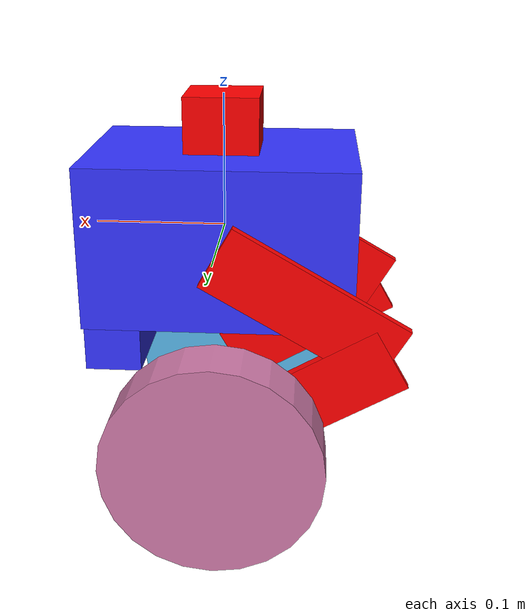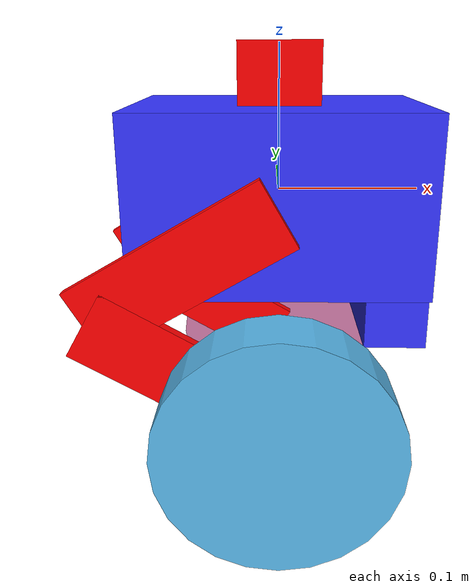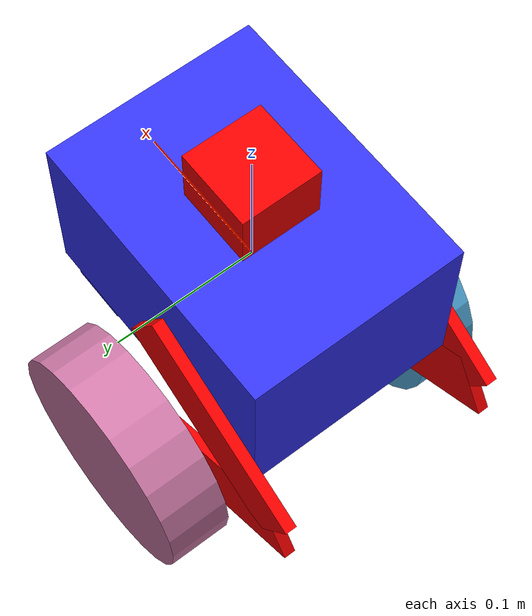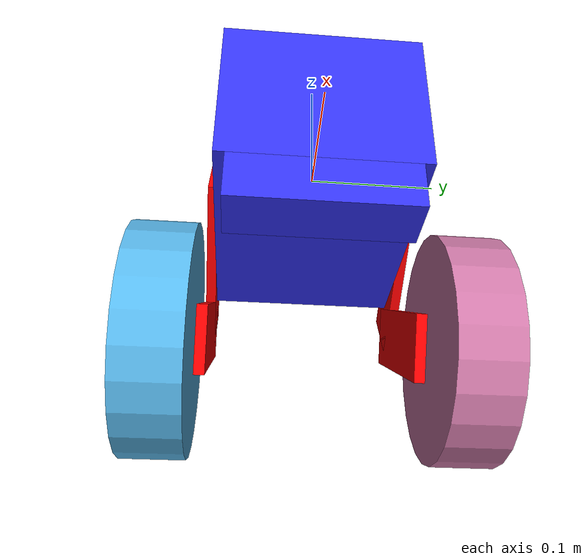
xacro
<?xml version="1.0"?>

<robot xmlns:xacro="http://www.ros.org/wiki/xacro" name='werdna'>

    <xacro:include filename="consts.xacro"/>
    <xacro:include filename='inertial_macros.xacro'/>

    <!-- Chassis -->
    <link name="base_link">
        <xacro:inertial_box mass="${chassis_mass}" x="${chassis_length}" y="${chassis_width}" z="${chassis_height}">
            <origin xyz="0 0 0" rpy="0 0 0"/>
        </xacro:inertial_box>
        <visual>
            <origin xyz="${chassis_offset_x} ${chassis_offset_y} ${chassis_offset_z}" rpy="0.0 0.0 0.0"/>
            <geometry>
                <box size="${chassis_length} ${chassis_width} ${chassis_height}"/>
            </geometry>
            <material name="blue"/>
        </visual>
        <collision>
            <origin xyz="${chassis_offset_x} ${chassis_offset_y} ${chassis_offset_z}" rpy="0.0 0.0 0.0"/>
            <geometry>
                <box size="${chassis_length} ${chassis_width} ${chassis_height}"/>
            </geometry>
            <material name="blue"/>
        </collision>
    </link>

    <link name="battery_link">
        <xacro:inertial_box mass="${battery_mass}" x="${battery_length}" y="${battery_width}" z="${battery_height}">
            <origin xyz="0 0 0" rpy="0 0 0"/>
        </xacro:inertial_box>
        <visual>
            <origin xyz="0 0 0" rpy="0.0 0.0 0.0"/>
            <geometry>
                <box size="${battery_length} ${battery_width} ${battery_height}"/>
            </geometry>
            <material name="blue"/>
        </visual>
        <collision>
            <origin xyz="0 0 0" rpy="0.0 0.0 0.0"/>
            <geometry>
                <box size="${battery_length} ${battery_width} ${battery_height}"/>
            </geometry>
            <material name="blue"/>
        </collision>
    </link>

    <joint name="battery_joint" type="fixed">
        <origin xyz="${battery_offset_x} ${battery_offset_y} ${battery_offset_z}" rpy="0.0 0.0 ${pi/2}"/>
        <parent link="base_link"/>
        <child link="battery_link"/>
    </joint>

    <!-- BASE_FOOTPRINT LINK -->

    <joint name="base_footprint_joint" type="fixed">
        <parent link="base_link"/>
        <child link="base_footprint"/>
        <origin xyz="0 0 0" rpy="0 0 0"/>
    </joint>

    <link name="base_footprint">
    </link>

    <!-- imu -->
    <link name="laser">
        <visual>
            <origin xyz="0 0 0" rpy="0 0 0"/>
            <geometry>
                <box size="0.0556 0.0556 0.0413" rpy="0 0 0"/>
            </geometry>
            <material name="red"/>
        </visual>
        <collision>
            <origin xyz="0 0 0" rpy="0 0 0"/>
            <geometry>
                <box size="0.0556 0.0556 0.0413" rpy="0 0 0"/>
            </geometry>
            <material name="red"/>
        </collision>
        <xacro:inertial_box mass="0.1" x="0.0556" y="0.0556" z="0.0413">
             <origin xyz="0 0 0" rpy="0 0 0"/>
        </xacro:inertial_box>
    </link>

    <joint name="laser_joint" type="fixed">
        <origin xyz="0 0 ${chassis_height/2 + 0.0413/2}" rpy="0.0 0.0 -${pi}"/>
        <parent link="base_link"/>
        <child link="laser"/>
    </joint>

    <link name="left_hip_link">
        <visual>
             <origin xyz="-${rod_height/2} 0 0" rpy="0 ${pi/2} 0"/>
            <geometry>
                <box size="${rod_length} ${rod_width} ${rod_height}" rpy="0 0 0"/>
            </geometry>
            <material name="red"/>
        </visual>
        <collision>
             <origin xyz="-${rod_height/2} 0 0" rpy="0 ${pi/2} 0"/>
            <geometry>
                <box size="${rod_length} ${rod_width} ${rod_height}" rpy="0 0 0"/>
            </geometry>
            <material name="red"/>
        </collision>
        <xacro:inertial_box mass="${rod_mass}" x="${rod_length}" y="${rod_width}" z="${rod_height}">
             <origin xyz="-${rod_height/2} 0 0" rpy="0 ${pi/2} 0"/>
        </xacro:inertial_box>
    </link>

    <joint name="left_hip_joint" type="revolute">
        <origin xyz="0.0 ${gearbox_offset_y} 0.0" rpy="${pi/2} -${pi/6} 0.0"/>
        <parent link="base_link"/>
        <child link="left_hip_link"/>
        <axis xyz="0.0 0.0 1.0"/>
        <limit lower="-0.524" upper="0.524" velocity="10" effort="20"/>
    </joint>

    <link name="left_knee_link">
        <visual>
             <origin xyz="0 0 ${rod_height/2}" rpy="0.0 0 ${pi/2}"/>
            <geometry>
                <box size="${rod_length} ${rod_width} ${rod_height}" rpy="0 0 0"/>
            </geometry>
            <material name="red"/>
        </visual>
        <collision>
             <origin xyz="0 0 ${rod_height/2}" rpy="0 0 ${pi/2}"/>
            <geometry>
                <box size="${rod_length} ${rod_width} ${rod_height}" rpy="0 0 0"/>
            </geometry>
            <material name="red"/>
        </collision>
        <xacro:inertial_box mass="${knee_rod_mass}" x="${rod_length}" y="${rod_width}" z="${rod_height}">
             <origin xyz="0 0 ${rod_height/2}" rpy="0 0 ${pi/2}"/>
        </xacro:inertial_box>
    </link>

    <joint name="left_knee_joint" type="revolute">
        <origin xyz="-${rod_height} 0 0" rpy="${pi/2} 0 ${pi/6}"/>
        <parent link="left_hip_link"/>
        <child link="left_knee_link"/>
        <axis xyz="0.0 -1.0 0.0"/>
        <limit lower="0" upper="1.047" velocity="${velocity}" effort="${effort}"/>
    </joint>

    <link name="left_wheel_link">
        <visual>
            <origin xyz="0.0 0.0 0.0" rpy="0.0 0.0 0.0"/>
            <geometry>
                <cylinder radius="${wheel_radius}" length="${wheel_length}"/>
            </geometry>
        </visual>
        <collision>
            <origin xyz="0.0 0.0 0.0" rpy="0.0 0.0 0.0"/>
            <geometry>
                <cylinder radius="${wheel_radius}" length="${wheel_length}"/>
            </geometry>
        </collision>
        <xacro:inertial_cylinder mass="${wheel_mass}" length="${wheel_length}" radius="${wheel_radius}">
            <origin xyz="0.0 0.0 0.0" rpy="0.0 0.0 0.0"/>
        </xacro:inertial_cylinder>
    </link>

    <joint name="left_wheel_joint" type="continuous">
        <parent link="left_knee_link"/>
        <child link="left_wheel_link"/>
        <origin xyz="0 -${rod_length/2 + wheel_length/2} ${rod_height}" rpy="${pi/2} 0.0 0.0"/>
        <axis xyz="0.0 0.0 1.0"/>
    </joint>

        <!-- Right Hip - Gearbox -->

    <link name="right_hip_link">
        <visual>
             <origin xyz="-${rod_height/2} 0 0" rpy="0 ${pi/2} 0"/>
            <geometry>
                <box size="${rod_length} ${rod_width} ${rod_height}" rpy="0 0 0"/>
            </geometry>
            <material name="red"/>
        </visual>
        <collision>
             <origin xyz="-${rod_height/2} 0 0" rpy="0 ${pi/2} 0"/>
            <geometry>
                <box size="${rod_length} ${rod_width} ${rod_height}" rpy="0 0 0"/>
            </geometry>
            <material name="red"/>
        </collision>
        <xacro:inertial_box mass="${rod_mass}" x="${rod_length}" y="${rod_width}" z="${rod_height}">
             <origin xyz="-${rod_height/2} 0 0" rpy="0 ${pi/2} 0"/>
        </xacro:inertial_box>
    </link>

    <joint name="right_hip_joint" type="revolute">
        <origin xyz="0.0 -${gearbox_offset_y} 0.0" rpy="${pi/2} -${pi/6} 0.0"/>
        <parent link="base_link"/>
        <child link="right_hip_link"/>
        <axis xyz="0.0 0.0 1.0"/>
        <limit lower="-0.524" upper="0.524" velocity="10" effort="20"/>
    </joint>

    <link name="right_knee_link">
        <visual>
             <origin xyz="0 0 ${rod_height/2}" rpy="0.0 0 ${pi/2}"/>
            <geometry>
                <box size="${rod_length} ${rod_width} ${rod_height}" rpy="0 0 0"/>
            </geometry>
            <material name="red"/>
        </visual>
        <collision>
             <origin xyz="0 0 ${rod_height/2}" rpy="0 0 ${pi/2}"/>
            <geometry>
                <box size="${rod_length} ${rod_width} ${rod_height}" rpy="0 0 0"/>
            </geometry>
            <material name="red"/>
        </collision>
        <xacro:inertial_box mass="${knee_rod_mass}" x="${rod_length}" y="${rod_width}" z="${rod_height}">
             <origin xyz="0 0 ${rod_height/2}" rpy="0 0 ${pi/2}"/>
        </xacro:inertial_box>
    </link>

    <joint name="right_knee_joint" type="revolute">
        <origin xyz="-${rod_height} 0 0" rpy="${pi/2} 0 ${pi/6}"/>
        <parent link="right_hip_link"/>
        <child link="right_knee_link"/>
        <axis xyz="0.0 -1.0 0.0"/>
        <limit lower="0" upper="1.047" velocity="${velocity}" effort="${effort}"/>
    </joint>

    <link name="right_wheel_link">
        <visual>
            <origin xyz="0.0 0.0 0.0" rpy="0.0 0.0 0.0"/>
            <geometry>
                <cylinder radius="${wheel_radius}" length="${wheel_length}"/>
            </geometry>
        </visual>
        <collision>
            <origin xyz="0.0 0.0 0.0" rpy="0.0 0.0 0.0"/>
            <geometry>
                <cylinder radius="${wheel_radius}" length="${wheel_length}"/>
            </geometry>
             <surface>
                <contact>
                <ode>
                    <mu>0.5</mu>
                </ode>
                </contact>
            </surface>
        </collision>
        <xacro:inertial_cylinder mass="${wheel_mass}" length="${wheel_length}" radius="${wheel_radius}">
            <origin xyz="0.0 0.0 0.0" rpy="0.0 0.0 0.0"/>
        </xacro:inertial_cylinder>
    </link>

    <joint name="right_wheel_joint" type="continuous">
        <parent link="right_knee_link"/>
        <child link="right_wheel_link"/>
        <origin xyz="0 ${rod_length/2 + wheel_length/2} ${rod_height}" rpy="${pi/2} 0.0 0.0"/>
        <axis xyz="0.0 0.0 1.0"/>
    </joint>

</robot>

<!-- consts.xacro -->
<robot xmlns:xacro="http://www.ros.org/wiki/xacro">

   <!-- joint's limits -->
    <xacro:property name="high_limit" value="3.142"/>
    <xacro:property name="low_limit" value="-3.142"/>
    <xacro:property name="velocity" value="10.0"/>
    <xacro:property name="effort" value="10.0"/>

    <material name="white">
        <color rgba="1 1 1 1" />
    </material>

    <material name="orange">
        <color rgba="1 0.3 0.1 1"/>
    </material>

    <material name="blue">
        <color rgba="0.2 0.2 1 1"/>
    </material>

    <material name="black">
        <color rgba="0 0 0 1"/>
    </material>

    <material name="red">
        <color rgba="1 0 0 1"/>
    </material>

    <!-- Width, length, height = x,y,z -->
    <xacro:property name="chassis_length" value="0.2"/>
    <xacro:property name="chassis_width" value="0.15"/>
    <xacro:property name="chassis_height" value="0.12"/>

    <xacro:property name="wheel_radius" value="0.08255"/>
    <xacro:property name="wheel_length" value="0.045"/>

    <xacro:property name="gearbox_radius" value="0.055"/>
    <xacro:property name="gearbox_thickness" value="0.0738"/>

    <xacro:property name="imu_length" value="0.01"/>
    <xacro:property name="imu_width" value="0.01"/>
    <xacro:property name="imu_height" value="0.01"/>

    <xacro:property name="battery_length" value="0.134"/>
    <xacro:property name="battery_width" value="0.042"/>
    <xacro:property name="battery_height" value="0.036"/>

    <xacro:property name="rod_length" value="0.008"/>
    <xacro:property name="rod_width" value="0.05"/>
    <xacro:property name="rod_height" value="0.148"/>

    <!-- Masses -->

    <xacro:property name="chassis_mass" value="1.0"/>
    <xacro:property name="battery_mass" value="0.5"/>
    <xacro:property name="knee_rod_mass" value="0.05"/>
    <xacro:property name="rod_mass" value="0.05"/>
    <xacro:property name="wheel_mass" value="0.3"/>
    <xacro:property name="gearbox_mass" value="0.21"/>
    <xacro:property name="imu_mass" value="0.001"/>

    <!-- Offsets -->

    <xacro:property name="chassis_offset_x" value="0"/>
    <xacro:property name="chassis_offset_y" value="0"/>
    <xacro:property name="chassis_offset_z" value="0"/>

    <xacro:property name="battery_offset_x" value="${chassis_length/2 - battery_width/2}"/>
    <xacro:property name="battery_offset_y" value="0"/>
    <xacro:property name="battery_offset_z" value="-${chassis_height/2 + battery_height/2}"/>

    <xacro:property name="imu_offset_x" value="0"/>
    <xacro:property name="imu_offset_y" value="0"/>
    <xacro:property name="imu_offset_z" value="0"/>

    <xacro:property name="gearbox_offset_x" value="0"/>
    <xacro:property name="gearbox_offset_y" value="${chassis_width/2 + rod_length/2}"/>
    <xacro:property name="gearbox_offset_z" value="0"/>

    <xacro:property name="hip_offset_x" value="${-rod_height}"/>
    <xacro:property name="hip_offset_y" value="0"/>
    <xacro:property name="hip_offset_z" value="${gearbox_thickness/2 + rod_length/2}"/>

    <xacro:property name="knee_offset_x" value="0"/>
    <xacro:property name="knee_offset_y" value="0"/>
    <xacro:property name="knee_offset_z" value="${motor_thickness/2 + rod_length/2}"/>

    <xacro:property name="wheel_offset_x" value="${knee_rod_length/2 + wheel_length/2} "/>
    <xacro:property name="wheel_offset_y" value="0"/>
    <xacro:property name="wheel_offset_z" value="${knee_rod_height}"/>

</robot>
